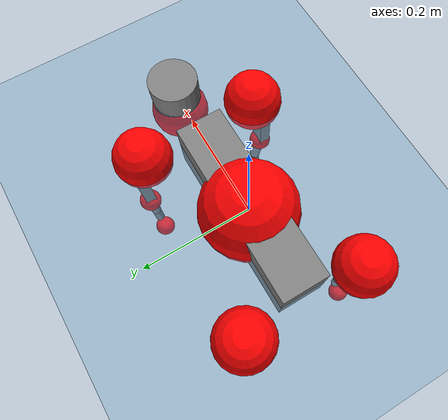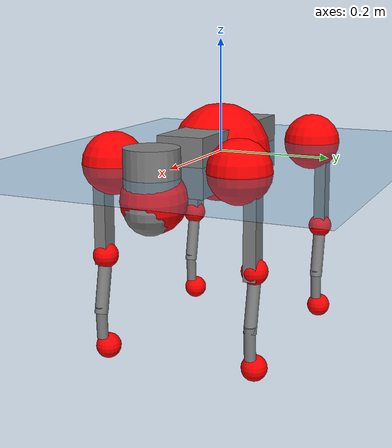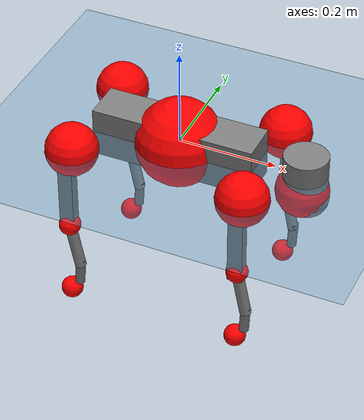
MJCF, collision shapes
<mujoco model="go2">
  <compiler angle="radian" assetdir="assets" balanceinertia="true" inertiafromgeom="false"/>

  <option timestep="0.005" density="1.2" viscosity="2e-05"/>

  <size nkey="1"/>

  <visual>
    <quality shadowsize="8192"/>
    <map shadowclip="0.5"/>
  </visual>

  <default>
    <default class="/">
      <geom contype="0" conaffinity="0" group="1" solref="-1000 -80"/>
      <site size="0.01 0.005 0.005" group="5"/>
      <general forcelimited="true" biastype="affine" gainprm="20" biasprm="0 -20 -0.5"/>
      <default class="go2">
        <joint armature="0.01" damping="0.01" frictionloss="0.2"/>
        <geom condim="1" margin="0.001"/>
        <default class="visual">
          <geom type="mesh" group="2"/>
        </default>
        <default class="collision">
          <geom group="3"/>
          <default class="foot">
            <geom size="0.022 0 0" condim="6" priority="1" friction="0.8 0.02 0.01" solimp="0.015 1 0.022"/>
          </default>
        </default>
        <default class="reward_collision_sphere">
          <geom group="5" rgba="1 0 0 1"/>
        </default>
      </default>
    </default>
  </default>

  <asset>
    <texture type="skybox" colorspace="auto" name="//unnamed_texture_0" builtin="gradient" rgb1="0.95 0.95 0.95" rgb2="0.95 0.95 0.95" width="100" height="600"/>
    <texture type="2d" colorspace="auto" name="texplane" builtin="checker" rgb1="0.345 0.575 0.748" rgb2="0.345 0.575 0.748" markrgb="1 1 1" width="512" height="512"/>
    <material name="MatPlane" class="/" texture="texplane" texuniform="true" texrepeat="2 2" specular="0.9"/>
    <material name="metal" class="/" rgba="0.9 0.95 0.95 1"/>
    <material name="black" class="/" rgba="0 0 0 1"/>
    <material name="white" class="/"/>
    <material name="gray" class="/" rgba="0.671705 0.692426 0.77427 1"/>
    <mesh name="base_0" class="/" file="base_0.obj"/>
    <mesh name="base_1" class="/" file="base_1.obj"/>
    <mesh name="base_2" class="/" file="base_2.obj"/>
    <mesh name="base_3" class="/" file="base_3.obj"/>
    <mesh name="base_4" class="/" file="base_4.obj"/>
    <mesh name="hip_0" class="/" file="hip_0.obj"/>
    <mesh name="hip_1" class="/" file="hip_1.obj"/>
    <mesh name="thigh_0" class="/" file="thigh_0.obj"/>
    <mesh name="thigh_1" class="/" file="thigh_1.obj"/>
    <mesh name="thigh_mirror_0" class="/" file="thigh_mirror_0.obj"/>
    <mesh name="thigh_mirror_1" class="/" file="thigh_mirror_1.obj"/>
    <mesh name="calf_0" class="/" file="calf_0.obj"/>
    <mesh name="calf_1" class="/" file="calf_1.obj"/>
    <mesh name="calf_mirror_0" class="/" file="calf_mirror_0.obj"/>
    <mesh name="calf_mirror_1" class="/" file="calf_mirror_1.obj"/>
    <mesh name="foot" class="/" file="foot.obj"/>
  </asset>

  <worldbody>
    <geom name="floor" class="/" size="100 100 0.125" type="plane" group="0" material="MatPlane"/>
    <light name="toplight_shadow" class="/" pos="0 0 5" dir="0.0990148 0.0990148 -0.990148" type="directional" ambient="0.04 0.04 0.04" diffuse="0.55 0.55 0.55" specular="0.12 0.12 0.12"/>
    <light name="toplight_fill" class="/" pos="0 0 5" dir="0.0990148 0.0990148 -0.990148" type="directional" castshadow="false" ambient="0.04 0.04 0.04" diffuse="0.3 0.3 0.3" specular="0.08 0.08 0.08"/>
    <body name="trunk" childclass="go2" pos="-0.000230341 0.000116332 -0.00246225" quat="1 0.00019371 5.70083e-05 -0.00039962">
      <inertial pos="0.0183662 0.000479598 -0.00220757" quat="-0.000391665 0.71395 -0.00233494 0.700192" mass="4.75539" diaginertia="0.0692849 0.0800072 0.00698516"/>
      <joint name="//unnamed_joint_0" type="free" armature="0" damping="0" frictionloss="0"/>
      <geom name="//unnamed_geom_1" class="visual" material="black" mesh="base_0"/>
      <geom name="//unnamed_geom_2" class="visual" material="black" mesh="base_1"/>
      <geom name="//unnamed_geom_3" class="visual" material="black" mesh="base_2"/>
      <geom name="//unnamed_geom_4" class="visual" material="white" mesh="base_3"/>
      <geom name="//unnamed_geom_5" class="visual" material="gray" mesh="base_4"/>
      <geom name="trunk_1" class="collision" size="0.167468 0.0416221 0.0507477" type="box"/>
      <geom name="trunk_2" class="collision" size="0.0445156 0.040064" pos="0.262196 0 0.00781979" type="cylinder"/>
      <geom name="trunk_3" class="collision" size="0.0418446" pos="0.269556 0 -0.0469188"/>
      <geom name="//unnamed_geom_9" class="reward_collision_sphere" size="0.0890311"/>
      <geom name="//unnamed_geom_10" class="reward_collision_sphere" size="0.0534187" pos="0.257597 0 -0.0351891"/>
      <site name="imu" pos="-0.0124074 -0.0140733 0.0450613" size="0.00890311"/>
      <camera name="track" pos="0 -1.93793 0" quat="0.707107 0.707107 0 0" mode="trackcom"/>
      <camera name="ego_camera" pos="0.287036 0 0.0351891" quat="-0.5 -0.5 0.5 0.5"/>
      <body name="FL_hip" pos="0.178053 0.0423218 0.00357645" quat="1 -0.000294871 0.000151327 -0.000515067">
        <inertial pos="-0.00640904 0.00309169 -0.00299242" quat="0.496951 0.499266 0.505493 0.498247" mass="0.458865" diaginertia="0.000570233 0.00048012 0.000141991"/>
        <joint name="FL_hip_joint" pos="0 0 0" axis="0.999986 -0.00162966 -0.00509215" range="-1.10131 1.04764" armature="0.0102036" damping="0.0201882" frictionloss="0.162513"/>
        <geom name="//unnamed_geom_11" class="visual" material="metal" mesh="hip_0"/>
        <geom name="//unnamed_geom_12" class="visual" material="gray" mesh="hip_1"/>
        <geom name="//unnamed_geom_13" class="collision" size="0.0409543 0.0178062" pos="0 0.0775173 0" quat="0.707107 0.707107 0 0" type="cylinder"/>
        <geom name="//unnamed_geom_14" class="reward_collision_sphere" size="0.0534187" pos="0 0.0678277 0"/>
        <body name="FL_thigh" pos="0.000724162 0.0913279 0.00344755" quat="1 0.000334434 -0.000482215 4.35877e-05">
          <inertial pos="-0.00273497 -0.0216293 -0.0282781" quat="0.830417 0.081301 -0.0167058 0.550925" mass="0.81393" diaginertia="0.00389406 0.00504027 0.000252771"/>
          <joint name="FL_thigh_joint" pos="0 0 0" axis="-0.0145402 0.999894 0.00110224" range="-1.62535 3.54723" armature="0.00952765" damping="0.00232364" frictionloss="0.171989"/>
          <geom name="//unnamed_geom_15" class="visual" material="metal" mesh="thigh_0"/>
          <geom name="//unnamed_geom_16" class="visual" material="gray" mesh="thigh_1"/>
          <geom name="//unnamed_geom_17" class="collision" size="0.0948181 0.0109063 0.0151353" pos="0 0 -0.0832808" quat="0.707107 0 0.707107 0" type="box"/>
          <body name="FL_calf" pos="-0.0038427 0.00194562 -0.164512" quat="1 -0.000188398 0.000352256 4.02284e-05">
            <inertial pos="0.00693653 -0.000437658 -0.110196" quat="0.710978 0.000776591 -0.0035834 0.703205" mass="0.160582" diaginertia="0.000979961 0.00125567 1.49117e-05"/>
            <joint name="FL_calf_joint" pos="0 0 0" axis="-0.00171266 0.999975 -0.00680722" stiffness="3.48137e-05" range="-2.73293 -0.844507" armature="0.00779159" damping="0.0152016" frictionloss="0.156305"/>
            <geom name="//unnamed_geom_18" class="visual" material="gray" mesh="calf_0"/>
            <geom name="//unnamed_geom_19" class="visual" material="black" mesh="calf_1"/>
            <geom name="FL_calf0" class="collision" size="0.0106837 0.0534187" pos="0.0073599 0 -0.0469188" quat="0.994493 0 -0.104807 0" type="cylinder"/>
            <geom name="//unnamed_geom_21" class="collision" size="0.00979342 0.0289351" pos="0.0183998 0 -0.115733" quat="0.999688 0 0.0249974 0" type="cylinder"/>
            <geom name="//unnamed_geom_22" class="visual" pos="0 0 -0.166562" quat="1 0 0 0" material="black" mesh="foot"/>
            <geom name="FL_foot" class="foot" size="0.0176288" pos="-0.00183998 0 -0.166562"/>
            <geom name="//unnamed_geom_24" class="reward_collision_sphere" size="0.0222578"/>
            <geom name="//unnamed_geom_25" class="reward_collision_sphere" size="0.0222578" pos="-0.00183998 0 -0.166562"/>
            <site name="FL_foot" class="foot" pos="-0.00183998 0 -0.166562" size="0.00890311"/>
          </body>
        </body>
      </body>
      <body name="FR_hip" pos="0.18148 -0.0480338 0.00171345" quat="0.999999 -0.000986133 -0.000193208 -0.000530844">
        <inertial pos="-0.00497851 -0.00237797 -0.000900234" quat="0.498769 0.505148 0.498489 0.497558" mass="0.482603" diaginertia="0.000580717 0.000484086 0.000140188"/>
        <joint name="FR_hip_joint" pos="0 0 0" axis="0.999987 0.00336966 0.00375484" stiffness="0.0148411" range="-1.00798 1.03192" armature="0.00915635" damping="0.0230703" frictionloss="0.154082"/>
        <geom name="//unnamed_geom_26" class="visual" pos="0 1.62895e-09 6.98692e-08" quat="4.63268e-05 1 0 0" material="metal" mesh="hip_0"/>
        <geom name="//unnamed_geom_27" class="visual" pos="0 2.64073e-09 -1.72813e-07" quat="4.63268e-05 1 0 0" material="gray" mesh="hip_1"/>
        <geom name="//unnamed_geom_28" class="collision" size="0.0409543 0.0178062" pos="0 -0.0775173 0" quat="0.707107 0.707107 0 0" type="cylinder"/>
        <geom name="//unnamed_geom_29" class="reward_collision_sphere" size="0.0534187" pos="0 -0.0678277 0"/>
        <body name="FR_thigh" pos="0.000187301 -0.0902344 0.000615494" quat="0.999999 -0.000412083 -0.000946586 0.000357975">
          <inertial pos="-0.00467012 0.0217535 -0.0254065" quat="0.55061 -0.0213051 0.0843862 0.830213" mass="0.782281" diaginertia="0.0038664 0.00480997 0.00025833"/>
          <joint name="FR_thigh_joint" pos="0 0 0" axis="0.00278518 -0.999994 0.00184639" range="-3.49908 1.55271" armature="0.00863024" damping="0" frictionloss="0.16811"/>
          <geom name="//unnamed_geom_30" class="visual" material="metal" mesh="thigh_mirror_0"/>
          <geom name="//unnamed_geom_31" class="visual" material="gray" mesh="thigh_mirror_1"/>
          <geom name="//unnamed_geom_32" class="collision" size="0.0948181 0.0109063 0.0151353" pos="0 0 -0.0832808" quat="0.707107 0 0.707107 0" type="box"/>
          <body name="FR_calf" pos="0.000728257 0.00212309 -0.163298" quat="1 -0.000231225 -0.000313588 -5.04549e-05">
            <inertial pos="0.00355141 -0.000474299 -0.110614" quat="0.708877 7.29428e-05 0.000382247 0.705332" mass="0.172629" diaginertia="0.00102161 0.00126933 1.57704e-05"/>
            <joint name="FR_calf_joint" pos="0 0 0" axis="-0.00524877 -0.999968 -0.00602482" range="0.871548 2.68525" armature="0.00886454" damping="0.00619917" frictionloss="0.181764"/>
            <geom name="//unnamed_geom_33" class="visual" material="gray" mesh="calf_mirror_0"/>
            <geom name="//unnamed_geom_34" class="visual" material="black" mesh="calf_mirror_1"/>
            <geom name="FR_calf0" class="collision" size="0.011574 0.0534187" pos="0.00919988 0 -0.0469188" quat="0.995004 0 -0.0998334 0" type="cylinder"/>
            <geom name="//unnamed_geom_36" class="collision" size="0.00979342 0.0289351" pos="0.0183998 0 -0.115733" quat="0.999688 0 0.0249974 0" type="cylinder"/>
            <geom name="//unnamed_geom_37" class="visual" pos="0 0 -0.166562" quat="1 0 0 0" material="black" mesh="foot"/>
            <geom name="FR_foot" class="foot" size="0.0217626" pos="-0.00183998 0 -0.166562"/>
            <geom name="//unnamed_geom_39" class="reward_collision_sphere" size="0.0222578"/>
            <geom name="//unnamed_geom_40" class="reward_collision_sphere" size="0.0222578" pos="-0.00183998 0 -0.166562"/>
            <site name="FR_foot" class="foot" pos="-0.00183998 0 -0.166562" size="0.00890311"/>
          </body>
        </body>
      </body>
      <body name="RL_hip" pos="-0.179101 0.0473992 0.000648677" quat="1 0.000142183 -5.99583e-05 -0.000113719">
        <inertial pos="0.00215699 0.000439613 0.000696373" quat="0.503096 0.496999 0.500278 0.499608" mass="0.482065" diaginertia="0.000598389 0.000525937 0.000135618"/>
        <joint name="RL_hip_joint" pos="0 0 0" axis="-0.999822 0.0150029 -0.0114285" range="-1.02511 0.99049" armature="0.00901715" damping="0" frictionloss="0.203092"/>
        <geom name="//unnamed_geom_41" class="visual" pos="-1.20227e-09 0 -2.35673e-07" quat="4.63268e-05 0 1 0" material="metal" mesh="hip_0"/>
        <geom name="//unnamed_geom_42" class="visual" pos="-1.94902e-09 0 -2.09008e-07" quat="4.63268e-05 0 1 0" material="gray" mesh="hip_1"/>
        <geom name="//unnamed_geom_43" class="collision" size="0.0409543 0.0178062" pos="0 0.0775173 0" quat="0.707107 0.707107 0 0" type="cylinder"/>
        <geom name="//unnamed_geom_44" class="reward_collision_sphere" size="0.0534187" pos="0 0.0678277 0"/>
        <body name="RL_thigh" pos="0.000749751 0.0905925 -0.000294343" quat="0.999999 0.000840228 -0.000928606 -0.000774305">
          <inertial pos="-0.00551911 -0.0239388 -0.025436" quat="0.834435 0.0766998 -0.0149449 0.545539" mass="0.801166" diaginertia="0.00393706 0.0048615 0.000268493"/>
          <joint name="RL_thigh_joint" pos="0 0 0" axis="-0.00486388 0.999979 0.00420968" stiffness="0.015499" range="-0.516233 4.54953" armature="0.0087602" damping="0" frictionloss="0.177778"/>
          <geom name="//unnamed_geom_45" class="visual" material="metal" mesh="thigh_0"/>
          <geom name="//unnamed_geom_46" class="visual" material="gray" mesh="thigh_1"/>
          <geom name="//unnamed_geom_47" class="collision" size="0.0948181 0.0109063 0.0151353" pos="0 0 -0.0832808" quat="0.707107 0 0.707107 0" type="box"/>
          <body name="RL_calf" pos="0.00205732 -0.0010961 -0.16595" quat="1 -0.000212076 0.000590778 0.000764227">
            <inertial pos="0.00794963 -0.00242055 -0.113017" quat="0.710665 0.000844399 -0.0048136 0.703513" mass="0.16575" diaginertia="0.000947582 0.00125255 1.52186e-05"/>
            <joint name="RL_calf_joint" pos="0 0 0" axis="0.0117942 0.999928 -0.00201665" range="-2.72316 -0.818211" armature="0.00859346" damping="0.0147987" frictionloss="0.202907"/>
            <geom name="//unnamed_geom_48" class="visual" material="gray" mesh="calf_0"/>
            <geom name="//unnamed_geom_49" class="visual" material="black" mesh="calf_1"/>
            <geom name="RL_calf0" class="collision" size="0.011574 0.0534187" pos="0.00919988 0 -0.0469188" quat="0.995004 0 -0.0998334 0" type="cylinder"/>
            <geom name="//unnamed_geom_51" class="collision" size="0.00979342 0.0289351" pos="0.0183998 0 -0.115733" quat="0.999688 0 0.0249974 0" type="cylinder"/>
            <geom name="//unnamed_geom_52" class="visual" pos="0 0 -0.166562" quat="1 0 0 0" material="black" mesh="foot"/>
            <geom name="RL_foot" class="foot" size="0.0180721" pos="-0.00183998 0 -0.166562"/>
            <geom name="//unnamed_geom_54" class="reward_collision_sphere" size="0.0222578"/>
            <geom name="//unnamed_geom_55" class="reward_collision_sphere" size="0.0222578" pos="-0.00183998 0 -0.166562"/>
            <site name="RL_foot" class="foot" pos="-0.00183998 0 -0.166562" size="0.00890311"/>
          </body>
        </body>
      </body>
      <body name="RR_hip" pos="-0.178492 -0.0426409 0.00190644" quat="1 -0.000579297 -0.000162892 0.00012386">
        <inertial pos="0.00577508 0.00112783 -0.00258812" quat="0.499666 0.496016 0.499441 0.504838" mass="0.453359" diaginertia="0.0005825 0.000475024 0.000135721"/>
        <joint name="RR_hip_joint" pos="0 0 0" axis="-0.999846 0.0119027 -0.012891" range="-1.08081 1.06855" armature="0.00823364" damping="0" frictionloss="0.202378"/>
        <geom name="//unnamed_geom_56" class="visual" pos="1.20397e-09 1.62895e-09 -3.05542e-07" quat="2.14617e-09 4.63268e-05 4.63268e-05 -1" material="metal" mesh="hip_0"/>
        <geom name="//unnamed_geom_57" class="visual" pos="1.94483e-09 2.64073e-09 -3.61948e-08" quat="2.14617e-09 4.63268e-05 4.63268e-05 -1" material="gray" mesh="hip_1"/>
        <geom name="//unnamed_geom_58" class="collision" size="0.0409543 0.0178062" pos="0 -0.0775173 0" quat="0.707107 0.707107 0 0" type="cylinder"/>
        <geom name="//unnamed_geom_59" class="reward_collision_sphere" size="0.0534187" pos="0 -0.0678277 0"/>
        <body name="RR_thigh" pos="0.000528045 -0.0932007 -3.4498e-05" quat="1 5.10974e-05 2.40625e-06 -6.24083e-05">
          <inertial pos="-0.00343138 0.0210947 -0.0227751" quat="0.556525 -0.0279581 0.087361 0.825752" mass="0.813236" diaginertia="0.00399638 0.00506714 0.00026093"/>
          <joint name="RR_thigh_joint" pos="0 0 0" axis="-0.0089928 -0.999955 -0.00298079" stiffness="0.00774952" range="-4.48668 0.50709" armature="0.00871659" damping="0.0207175" frictionloss="0.19555"/>
          <geom name="//unnamed_geom_60" class="visual" material="metal" mesh="thigh_mirror_0"/>
          <geom name="//unnamed_geom_61" class="visual" material="gray" mesh="thigh_mirror_1"/>
          <geom name="//unnamed_geom_62" class="collision" size="0.0948181 0.0109063 0.0151353" pos="0 0 -0.0832808" quat="0.707107 0 0.707107 0" type="box"/>
          <body name="RR_calf" pos="0.00205829 -0.00206617 -0.167032" quat="0.999999 0.000526105 0.000342797 -0.00102818">
            <inertial pos="0.00843515 0.00136014 -0.110686" quat="0.703917 -0.00305954 0.00105986 0.710274" mass="0.162178" diaginertia="0.000954912 0.0011776 1.48852e-05"/>
            <joint name="RR_calf_joint" pos="0 0 0" axis="-0.00363079 -0.999992 -0.0019379" range="0.875466 2.74939" armature="0.00930684" damping="0.0152287" frictionloss="0.177961"/>
            <geom name="//unnamed_geom_63" class="visual" material="gray" mesh="calf_mirror_0"/>
            <geom name="//unnamed_geom_64" class="visual" material="black" mesh="calf_mirror_1"/>
            <geom name="RR_calf0" class="collision" size="0.011574 0.0534187" pos="0.00919988 0 -0.0469188" quat="0.995004 0 -0.0998334 0" type="cylinder"/>
            <geom name="//unnamed_geom_66" class="collision" size="0.00979342 0.0289351" pos="0.0183998 0 -0.115733" quat="0.999688 0 0.0249974 0" type="cylinder"/>
            <geom name="//unnamed_geom_67" class="visual" pos="0 0 -0.166562" quat="1 0 0 0" material="black" mesh="foot"/>
            <geom name="RR_foot" class="foot" size="0.0200041" pos="-0.00183998 0 -0.166562"/>
            <geom name="//unnamed_geom_69" class="reward_collision_sphere" size="0.0222578"/>
            <geom name="//unnamed_geom_70" class="reward_collision_sphere" size="0.0222578" pos="-0.00183998 0 -0.166562"/>
            <site name="RR_foot" class="foot" pos="-0.00183998 0 -0.166562" size="0.00890311"/>
          </body>
        </body>
      </body>
    </body>
  </worldbody>

  <contact>
    <pair class="/" geom1="floor" geom2="FL_foot" name="//unnamed_contact_0"/>
    <pair class="/" geom1="floor" geom2="FR_foot" name="//unnamed_contact_1"/>
    <pair class="/" geom1="floor" geom2="RL_foot" name="//unnamed_contact_2"/>
    <pair class="/" geom1="floor" geom2="RR_foot" name="//unnamed_contact_3"/>
  </contact>

  <actuator>
    <general name="FL_hip" class="/" joint="FL_hip_joint" forcerange="-18.8814 18.8814" gainprm="18.1487" biasprm="0 -18.1487 -0.475068"/>
    <general name="FL_thigh" class="/" joint="FL_thigh_joint" forcerange="-21.4085 21.4085" gainprm="18.1487" biasprm="0 -18.1487 -0.475068"/>
    <general name="FL_calf" class="/" joint="FL_calf_joint" forcerange="-42.661 42.661" gainprm="18.1487" biasprm="0 -18.1487 -0.475068"/>
    <general name="FR_hip" class="/" joint="FR_hip_joint" forcerange="-19.6414 19.6414" gainprm="18.1487" biasprm="0 -18.1487 -0.475068"/>
    <general name="FR_thigh" class="/" joint="FR_thigh_joint" forcerange="-22.9171 22.9171" gainprm="18.1487" biasprm="0 -18.1487 -0.475068"/>
    <general name="FR_calf" class="/" joint="FR_calf_joint" forcerange="-36.1679 36.1679" gainprm="18.1487" biasprm="0 -18.1487 -0.475068"/>
    <general name="RL_hip" class="/" joint="RL_hip_joint" forcerange="-23.1497 23.1497" gainprm="18.1487" biasprm="0 -18.1487 -0.475068"/>
    <general name="RL_thigh" class="/" joint="RL_thigh_joint" forcerange="-21.1237 21.1237" gainprm="18.1487" biasprm="0 -18.1487 -0.475068"/>
    <general name="RL_calf" class="/" joint="RL_calf_joint" forcerange="-36.085 36.085" gainprm="18.1487" biasprm="0 -18.1487 -0.475068"/>
    <general name="RR_hip" class="/" joint="RR_hip_joint" forcerange="-21.2538 21.2538" gainprm="18.1487" biasprm="0 -18.1487 -0.475068"/>
    <general name="RR_thigh" class="/" joint="RR_thigh_joint" forcerange="-20.7475 20.7475" gainprm="18.1487" biasprm="0 -18.1487 -0.475068"/>
    <general name="RR_calf" class="/" joint="RR_calf_joint" forcerange="-39.7358 39.7358" gainprm="18.1487" biasprm="0 -18.1487 -0.475068"/>
  </actuator>

  <sensor>
    <gyro site="imu" name="imu_angular_velocity"/>
    <velocimeter site="imu" name="imu_linear_velocity"/>
    <framelinvel objtype="site" objname="FL_foot" name="FL_foot_global_linear_velocity"/>
    <framelinvel objtype="site" objname="FR_foot" name="FR_foot_global_linear_velocity"/>
    <framelinvel objtype="site" objname="RL_foot" name="RL_foot_global_linear_velocity"/>
    <framelinvel objtype="site" objname="RR_foot" name="RR_foot_global_linear_velocity"/>
  </sensor>

  <keyframe>
    <key name="home" qpos="0 0 0.325 1 0 0 0 0.1 0.8 -1.5 -0.1 -0.8 1.5 -0.1 0.8 -1.5 0.1 -0.8 1.5"/>
  </keyframe>
</mujoco>
